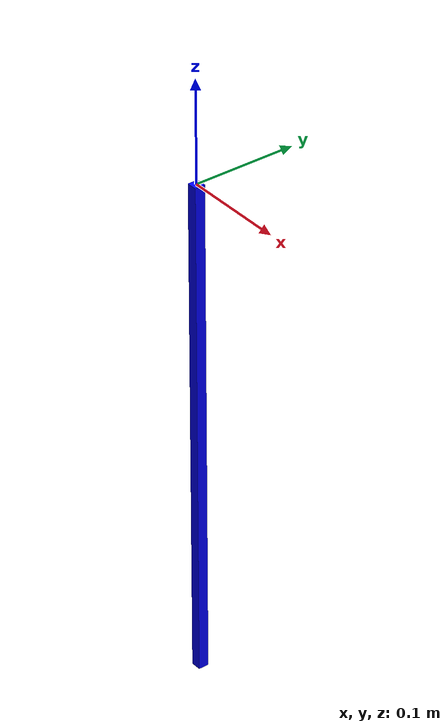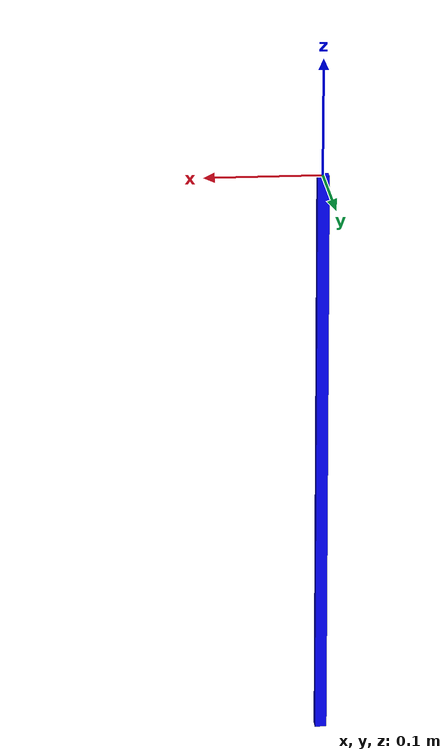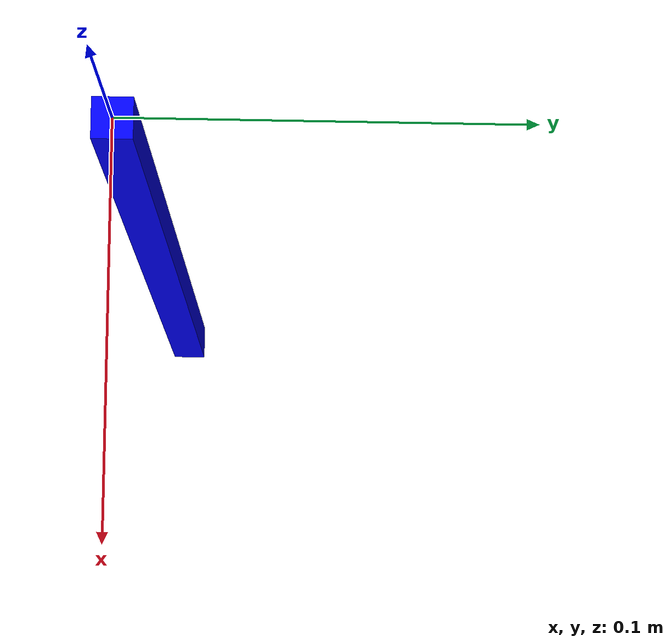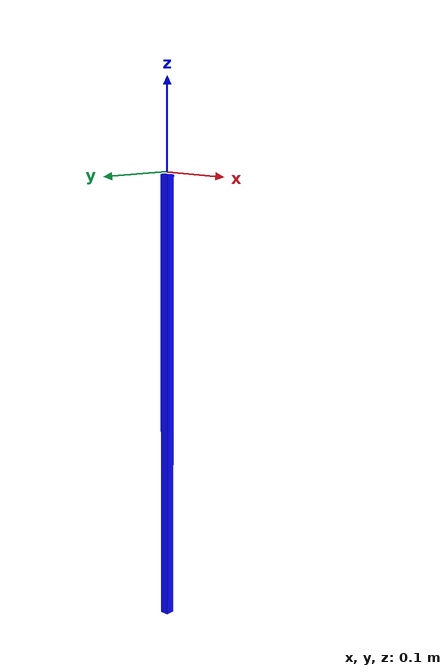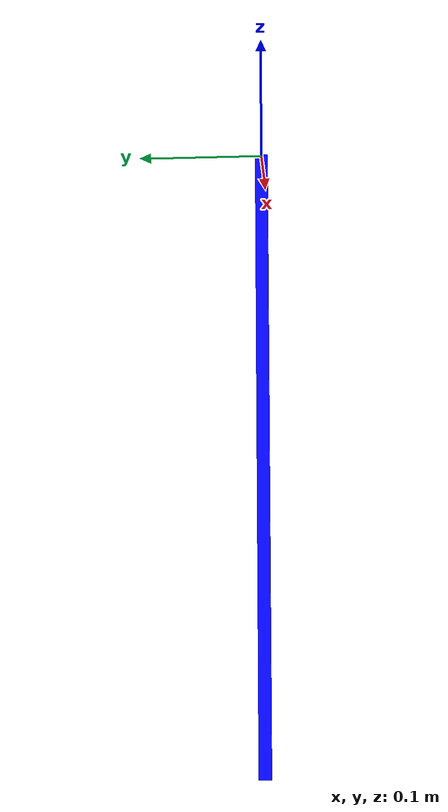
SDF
<sdf version="1.6">
  <model name="Beam">

    <!-- Beam Link -->
    <link name="beam_link">
      <self_collide>0</self_collide>
      <inertial>
        <mass>1</mass>
        <pose>0 0 -0.25 0 0 0 </pose>
        <inertia>
          <ixx>1</ixx>
          <ixy>0</ixy>
          <ixz>0</ixz>
          <iyy>1</iyy>
          <iyz>0</iyz>
          <izz>1</izz>
        </inertia>
      </inertial>
      <pose>0 0 0 0 0 0</pose>
      <gravity>1</gravity>

      <collision name='beam_collision'>
        <pose>0 0 -0.5 0 0 0</pose>
        <geometry>
          <sphere>
            <radius>0.01</radius>
          </sphere>
        </geometry>
      </collision>

      <sensor name="contact_sensor" type="contact">
        <update_rate>100.0</update_rate>
        <contact>
          <collision>beam_collision</collision>
        </contact>
      </sensor>

      <visual name="beam_visual">
        <pose>0 0 -0.25 0 0 0</pose>
        <geometry>
          <box>
            <size>0.01 0.01 0.5</size>
          </box>
        </geometry>
        <material>
          <ambient>0 0 1 1</ambient>
          <diffuse>0 0 1 1</diffuse>
        </material>
      </visual>
    </link>

    <plugin name='Leg_1_Plugin' filename='libSticky_Leg_Plugin.so'>
      <LegNumber>1</LegNumber>
      <LinkName>beam_link</LinkName>
      <CollisionName>beam_collision</CollisionName>
      <JointName>Leg_1_Contact_Joint</JointName>
    </plugin>

    <static>false</static>
  </model>
</sdf>
